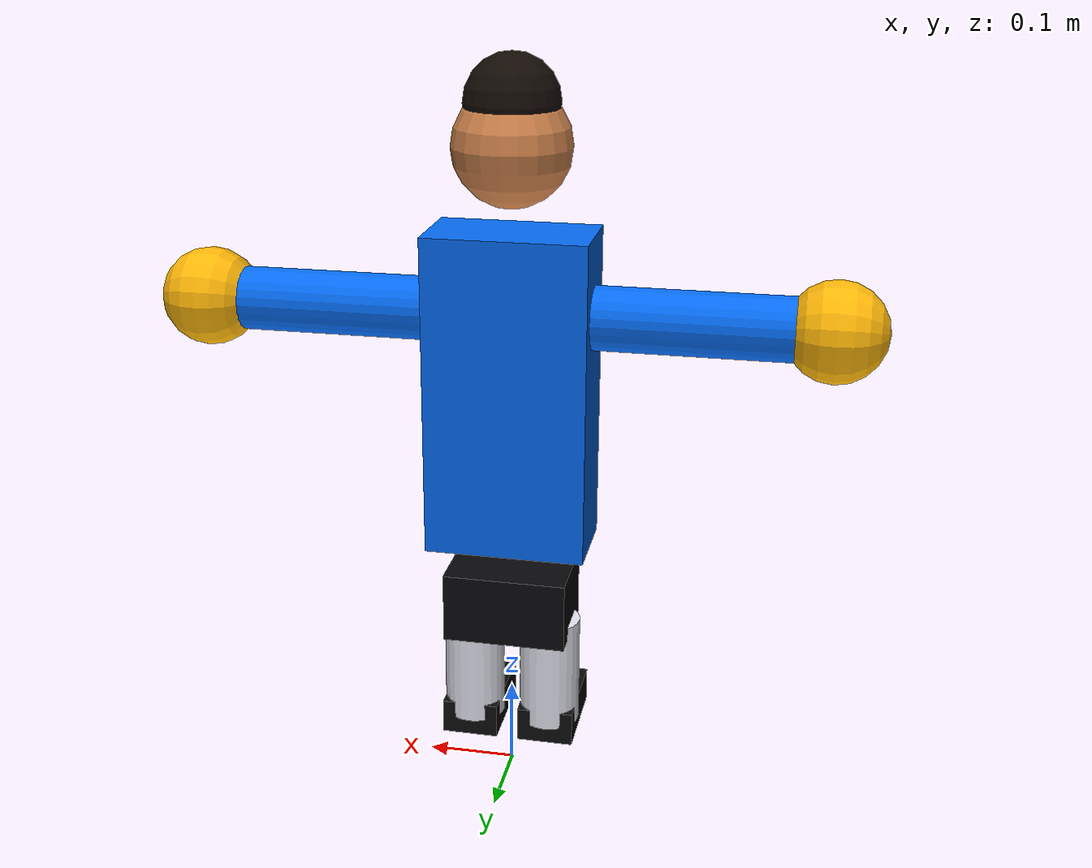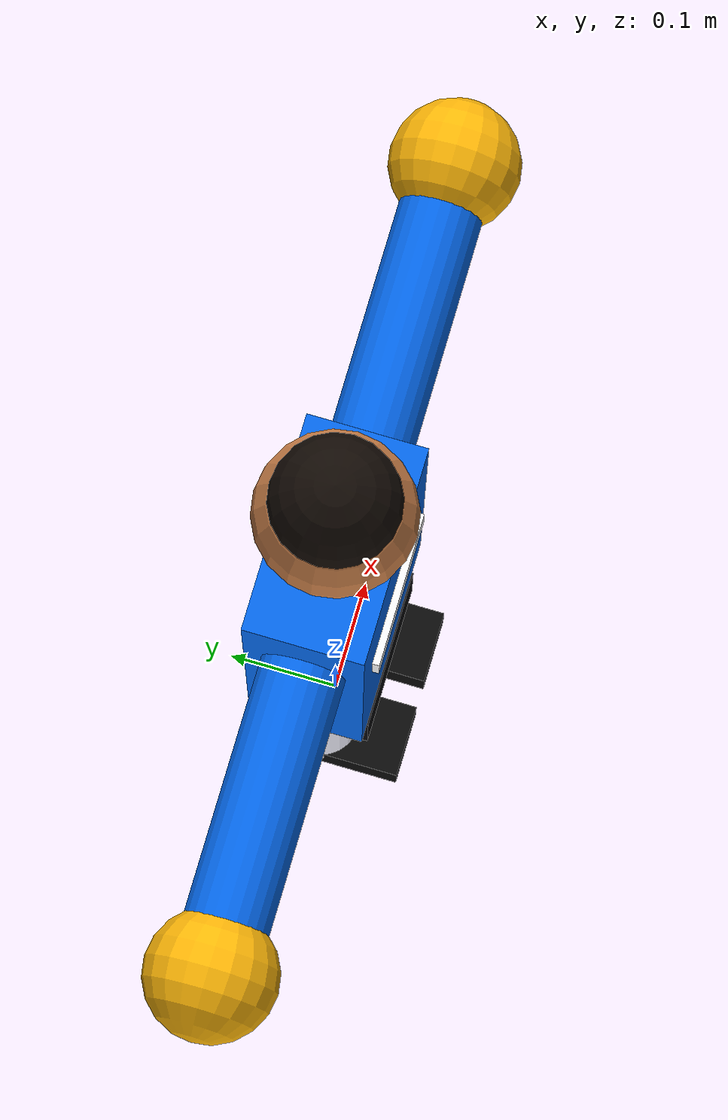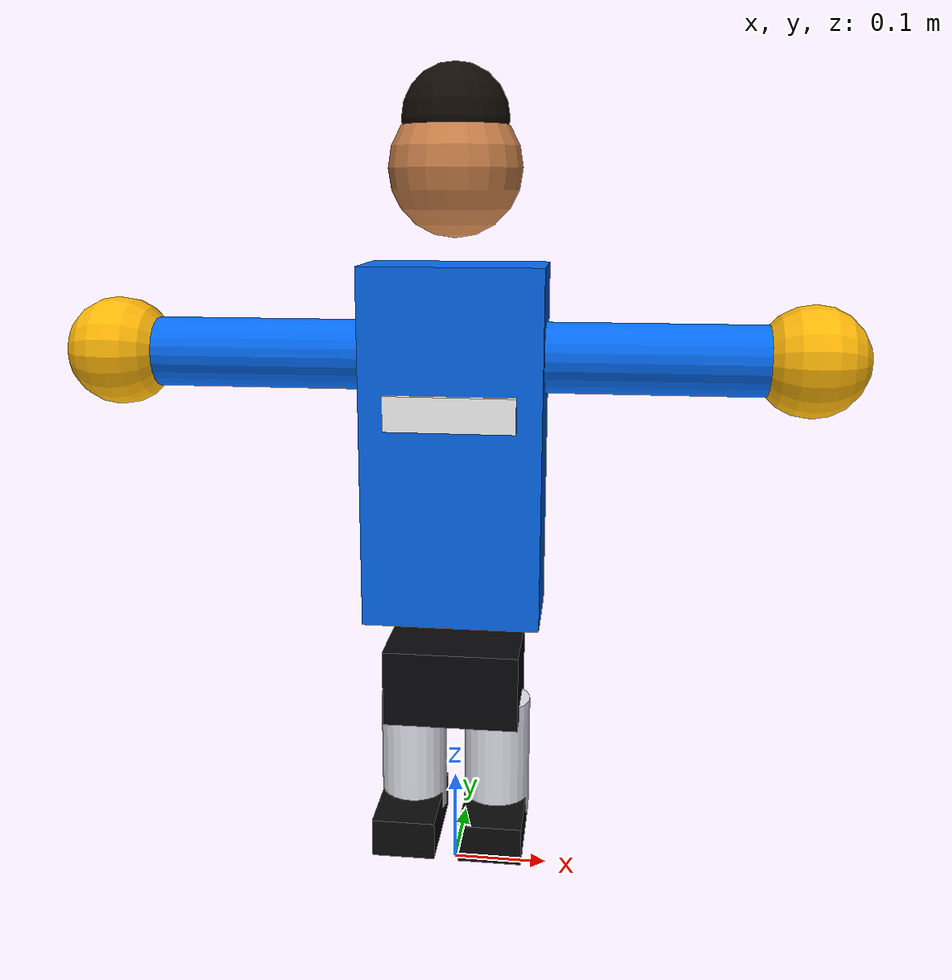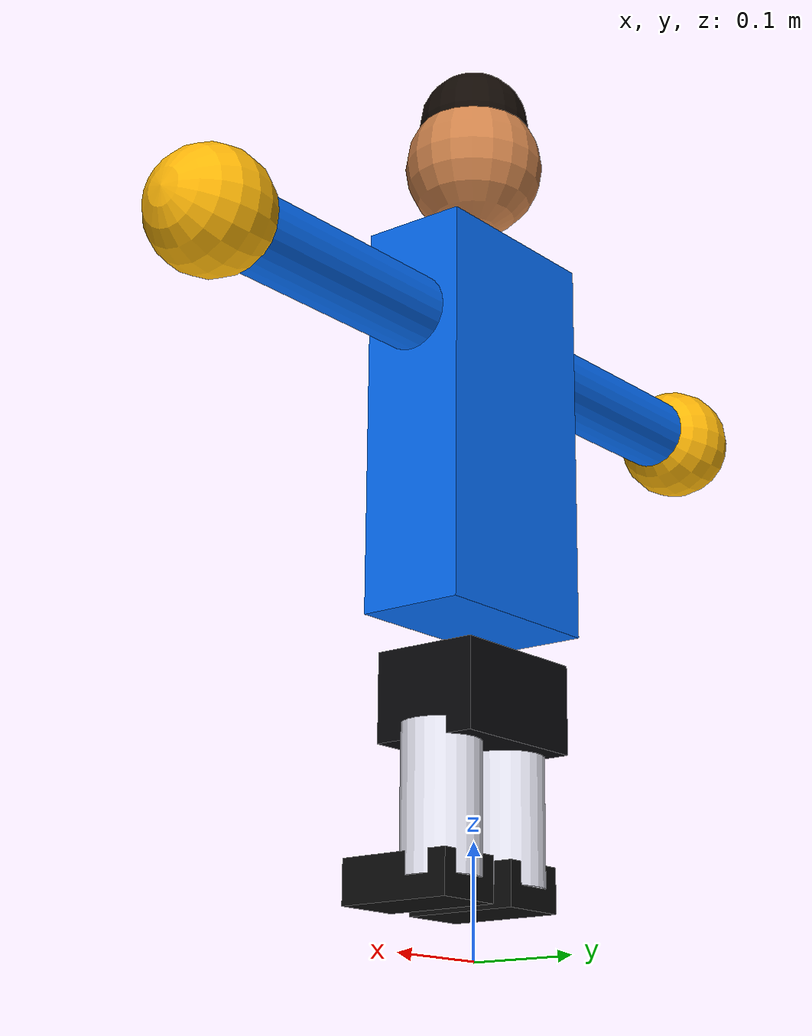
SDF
<?xml version="1.0" ?>
<sdf version="1.8">
  <model name="turtlebot3_burger">
    <pose>0.0 0.0 0.0 0.0 0.0 0.0</pose>

    <link name="base_footprint"/>

    <link name="base_link">

      <inertial>
        <pose>-0.064 0 0.070 0 0 0</pose>
        <inertia>
          <ixx>1.9527e-02</ixx>
          <ixy>0</ixy>
          <ixz>0</ixz>
          <iyy>1.9527e-02</iyy>
          <iyz>0</iyz>
          <izz>1.9527e-02</izz>
        </inertia>
        <mass>8.2573504e-01</mass>
      </inertial>

      <collision name="base_collision">
        <pose>-0.032 0 0.070 0 0 0</pose>
        <geometry>
          <box>
            <size>0.14 0.14 0.14</size>
          </box>
        </geometry>
      </collision>

      <collision name="goalkeeper_save_collision">
        <pose>0 0 0.46 0 0 0</pose>
        <geometry>
          <box>
            <size>0.34 0.10 0.82</size>
          </box>
        </geometry>
        <surface>
          <friction>
            <ode>
              <mu>1.0</mu>
              <mu2>1.0</mu2>
            </ode>
          </friction>
          <bounce>
            <restitution_coefficient>0.25</restitution_coefficient>
            <threshold>0.1</threshold>
          </bounce>
        </surface>
      </collision>

      <visual name="goalkeeper_shorts">
        <pose>0 0 0.22 0 0 0</pose>
        <geometry>
          <box>
            <size>0.14 0.10 0.08</size>
          </box>
        </geometry>
        <material>
          <ambient>0.03 0.03 0.04 1</ambient>
          <diffuse>0.03 0.03 0.04 1</diffuse>
        </material>
      </visual>

      <visual name="goalkeeper_jersey">
        <pose>0 0 0.47 0 0 0</pose>
        <geometry>
          <box>
            <size>0.18 0.10 0.36</size>
          </box>
        </geometry>
        <material>
          <ambient>0.02 0.28 0.75 1</ambient>
          <diffuse>0.02 0.42 0.95 1</diffuse>
        </material>
      </visual>

      <visual name="goalkeeper_chest_stripe">
        <pose>0 -0.052 0.51 0 0 0</pose>
        <geometry>
          <box>
            <size>0.13 0.008 0.035</size>
          </box>
        </geometry>
        <material>
          <ambient>0.9 0.9 0.9 1</ambient>
          <diffuse>1 1 1 1</diffuse>
        </material>
      </visual>

      <visual name="goalkeeper_head">
        <pose>0 0 0.74 0 0 0</pose>
        <geometry>
          <sphere>
            <radius>0.065</radius>
          </sphere>
        </geometry>
        <material>
          <ambient>0.55 0.30 0.16 1</ambient>
          <diffuse>0.82 0.52 0.30 1</diffuse>
        </material>
      </visual>

      <visual name="goalkeeper_hair">
        <pose>0 0 0.785 0 0 0</pose>
        <geometry>
          <sphere>
            <radius>0.052</radius>
          </sphere>
        </geometry>
        <material>
          <ambient>0.04 0.025 0.015 1</ambient>
          <diffuse>0.07 0.04 0.02 1</diffuse>
        </material>
      </visual>

      <visual name="goalkeeper_left_leg">
        <pose>0.045 0 0.13 0 0 0</pose>
        <geometry>
          <cylinder>
            <radius>0.035</radius>
            <length>0.13</length>
          </cylinder>
        </geometry>
        <material>
          <ambient>0.68 0.68 0.72 1</ambient>
          <diffuse>0.9 0.9 0.95 1</diffuse>
        </material>
      </visual>

      <visual name="goalkeeper_right_leg">
        <pose>-0.045 0 0.13 0 0 0</pose>
        <geometry>
          <cylinder>
            <radius>0.035</radius>
            <length>0.13</length>
          </cylinder>
        </geometry>
        <material>
          <ambient>0.68 0.68 0.72 1</ambient>
          <diffuse>0.9 0.9 0.95 1</diffuse>
        </material>
      </visual>

      <visual name="goalkeeper_left_boot">
        <pose>0.045 -0.025 0.065 0 0 0</pose>
        <geometry>
          <box>
            <size>0.065 0.11 0.04</size>
          </box>
        </geometry>
        <material>
          <ambient>0.02 0.02 0.02 1</ambient>
          <diffuse>0.04 0.04 0.04 1</diffuse>
        </material>
      </visual>

      <visual name="goalkeeper_right_boot">
        <pose>-0.045 -0.025 0.065 0 0 0</pose>
        <geometry>
          <box>
            <size>0.065 0.11 0.04</size>
          </box>
        </geometry>
        <material>
          <ambient>0.02 0.02 0.02 1</ambient>
          <diffuse>0.04 0.04 0.04 1</diffuse>
        </material>
      </visual>
    </link>

    <link name="left_arm_link">
      <pose>0.20 0 0.56 0 1.5708 0</pose>
      <inertial>
        <mass>0.04</mass>
        <inertia>
          <ixx>0.00015</ixx>
          <iyy>0.00015</iyy>
          <izz>0.00005</izz>
        </inertia>
      </inertial>
      <collision name="left_arm_collision">
        <geometry>
          <cylinder>
            <radius>0.035</radius>
            <length>0.24</length>
          </cylinder>
        </geometry>
      </collision>
      <visual name="left_arm_visual">
        <geometry>
          <cylinder>
            <radius>0.035</radius>
            <length>0.24</length>
          </cylinder>
        </geometry>
        <material>
          <ambient>0.02 0.28 0.75 1</ambient>
          <diffuse>0.02 0.42 0.95 1</diffuse>
        </material>
      </visual>
      <collision name="left_glove_collision">
        <pose>0 0 0.145 0 0 0</pose>
        <geometry>
          <sphere><radius>0.055</radius></sphere>
        </geometry>
      </collision>
      <visual name="left_glove_visual">
        <pose>0 0 0.145 0 0 0</pose>
        <geometry>
          <sphere><radius>0.055</radius></sphere>
        </geometry>
        <material>
          <ambient>0.9 0.55 0.02 1</ambient>
          <diffuse>1 0.72 0.03 1</diffuse>
        </material>
      </visual>
    </link>

    <link name="right_arm_link">
      <pose>-0.20 0 0.56 0 -1.5708 0</pose>
      <inertial>
        <mass>0.04</mass>
        <inertia>
          <ixx>0.00015</ixx>
          <iyy>0.00015</iyy>
          <izz>0.00005</izz>
        </inertia>
      </inertial>
      <collision name="right_arm_collision">
        <geometry>
          <cylinder>
            <radius>0.035</radius>
            <length>0.24</length>
          </cylinder>
        </geometry>
      </collision>
      <visual name="right_arm_visual">
        <geometry>
          <cylinder>
            <radius>0.035</radius>
            <length>0.24</length>
          </cylinder>
        </geometry>
        <material>
          <ambient>0.02 0.28 0.75 1</ambient>
          <diffuse>0.02 0.42 0.95 1</diffuse>
        </material>
      </visual>
      <collision name="right_glove_collision">
        <pose>0 0 0.145 0 0 0</pose>
        <geometry>
          <sphere><radius>0.055</radius></sphere>
        </geometry>
      </collision>
      <visual name="right_glove_visual">
        <pose>0 0 0.145 0 0 0</pose>
        <geometry>
          <sphere><radius>0.055</radius></sphere>
        </geometry>
        <material>
          <ambient>0.9 0.55 0.02 1</ambient>
          <diffuse>1 0.72 0.03 1</diffuse>
        </material>
      </visual>
    </link>

    <link name="imu_link">
      <sensor name="tb3_imu" type="imu">
        <always_on>true</always_on>
        <update_rate>200</update_rate>
        <topic>imu</topic>
        <imu>
          <angular_velocity>
            <x>
              <noise type="gaussian">
                <mean>0.0</mean>
                <stddev>2e-4</stddev>
              </noise>
            </x>
            <y>
              <noise type="gaussian">
                <mean>0.0</mean>
                <stddev>2e-4</stddev>
              </noise>
            </y>
            <z>
              <noise type="gaussian">
                <mean>0.0</mean>
                <stddev>2e-4</stddev>
              </noise>
            </z>
          </angular_velocity>
          <linear_acceleration>
            <x>
              <noise type="gaussian">
                <mean>0.0</mean>
                <stddev>1.7e-2</stddev>
              </noise>
            </x>
            <y>
              <noise type="gaussian">
                <mean>0.0</mean>
                <stddev>1.7e-2</stddev>
              </noise>
            </y>
            <z>
              <noise type="gaussian">
                <mean>0.0</mean>
                <stddev>1.7e-2</stddev>
              </noise>
            </z>
          </linear_acceleration>
        </imu>
      </sensor>
    </link>

    <link name="base_scan">
      <inertial>
        <pose>-0.020 0 0.161 0 0 0</pose>
        <inertia>
          <ixx>0.0001</ixx>
          <ixy>0.000</ixy>
          <ixz>0.000</ixz>
          <iyy>0.0001</iyy>
          <iyz>0.000</iyz>
          <izz>0.0001</izz>
        </inertia>
        <mass>0.114</mass>
      </inertial>

      <collision name="lidar_sensor_collision">
        <pose>-0.020 0 0.161 0 0 0</pose>
        <geometry>
          <cylinder>
            <radius>0.0508</radius>
            <length>0.055</length>
          </cylinder>
        </geometry>
      </collision>

    </link>

    <link name="wheel_left_link">

      <inertial>
        <pose>0 0.08 0.023 -1.57 0 0</pose>
        <inertia>
          <ixx>5.445e-05</ixx>
          <ixy>0</ixy>
          <ixz>0</ixz>
          <iyy>5.445e-05</iyy>
          <iyz>0</iyz>
          <izz>1.089e-04</izz>
        </inertia>
        <mass>0.1</mass>
      </inertial>

      <collision name="wheel_left_collision">
        <pose>0 0.08 0.023 -1.57 0 0</pose>
        <geometry>
          <cylinder>
            <radius>0.033</radius>
            <length>0.018</length>
          </cylinder>
        </geometry>
        <surface>
          <!-- This friction pamareter don't contain reliable data!! -->
          <friction>
            <ode>
              <mu>100000.0</mu>
              <mu2>100000.0</mu2>
              <fdir1>0 0 0</fdir1>
              <slip1>0.0</slip1>
              <slip2>0.0</slip2>
            </ode>
          </friction>
          <contact>
            <ode>
              <soft_cfm>0</soft_cfm>
              <soft_erp>0.2</soft_erp>
              <kp>1e+5</kp>
              <kd>1</kd>
              <max_vel>0.01</max_vel>
              <min_depth>0.001</min_depth>
            </ode>
          </contact>
        </surface>
      </collision>

    </link>

    <link name="wheel_right_link">

      <inertial>
        <pose>0.0 -0.08 0.023 -1.57 0 0</pose>
        <inertia>
          <ixx>5.445e-05</ixx>
          <ixy>0</ixy>
          <ixz>0</ixz>
          <iyy>5.445e-05</iyy>
          <iyz>0</iyz>
          <izz>1.089e-04</izz>
        </inertia>
        <mass>0.1</mass>
      </inertial>

      <collision name="wheel_right_collision">
        <pose>0.0 -0.08 0.023 -1.57 0 0</pose>
        <geometry>
          <cylinder>
            <radius>0.033</radius>
            <length>0.018</length>
          </cylinder>
        </geometry>
        <surface>
          <!-- This friction pamareter don't contain reliable data!! -->
          <friction>
            <ode>
              <mu>100000.0</mu>
              <mu2>100000.0</mu2>
              <fdir1>0 0 0</fdir1>
              <slip1>0.0</slip1>
              <slip2>0.0</slip2>
            </ode>
          </friction>
          <contact>
            <ode>
              <soft_cfm>0</soft_cfm>
              <soft_erp>0.2</soft_erp>
              <kp>1e+5</kp>
              <kd>1</kd>
              <max_vel>0.01</max_vel>
              <min_depth>0.001</min_depth>
            </ode>
          </contact>
        </surface>
      </collision>

    </link>

    <link name='caster_back_link'>
      <pose>-0.081 0 -0.004 -1.57 0 0</pose>
      <inertial>
        <mass>0.005</mass>
        <inertia>
          <ixx>0.00001</ixx>
          <ixy>0.000</ixy>
          <ixz>0.000</ixz>
          <iyy>0.00001</iyy>
          <iyz>0.000</iyz>
          <izz>0.00001</izz>
        </inertia>
      </inertial>
      <collision name='collision'>
        <geometry>
          <sphere>
            <radius>0.005000</radius>
          </sphere>
        </geometry>
        <surface>
          <contact>
            <ode>
              <soft_cfm>0</soft_cfm>
              <soft_erp>0.2</soft_erp>
              <kp>1e+5</kp>
              <kd>1</kd>
              <max_vel>0.01</max_vel>
              <min_depth>0.001</min_depth>
            </ode>
          </contact>
        </surface>
      </collision>
    </link>

    <joint name="base_joint" type="fixed">
      <parent>base_footprint</parent>
      <child>base_link</child>
      <pose>0.0 0.0 0.010 0 0 0</pose>
    </joint>

    <joint name="left_shoulder_joint" type="fixed">
      <parent>base_link</parent>
      <child>left_arm_link</child>
      <pose>0.08 0 0.56 0 0 0</pose>
    </joint>

    <joint name="right_shoulder_joint" type="fixed">
      <parent>base_link</parent>
      <child>right_arm_link</child>
      <pose>-0.08 0 0.56 0 0 0</pose>
    </joint>

    <joint name="wheel_left_joint" type="revolute">
      <parent>base_link</parent>
      <child>wheel_left_link</child>
      <pose>0.0 0.08 0.023 -1.57 0 0</pose>
      <axis>
        <xyz>0 0 1</xyz>
        <limit>
          <effort>20</effort>
        </limit>
      </axis>
    </joint>

    <joint name="wheel_right_joint" type="revolute">
      <parent>base_link</parent>
      <child>wheel_right_link</child>
      <pose>0.0 -0.08 0.023 -1.57 0 0</pose>
      <axis>
        <xyz>0 0 1</xyz>
        <limit>
          <effort>20</effort>
        </limit>
      </axis>
    </joint>

    <joint name='caster_back_joint' type='ball'>
      <parent>base_link</parent>
      <child>caster_back_link</child>
    </joint>

    <joint name="imu_joint" type="fixed">
      <parent>base_link</parent>
      <child>imu_link</child>
      <pose>-0.032 0 0.068 0 0 0</pose>
      <axis>
        <xyz>0 0 1</xyz>
      </axis>
    </joint>

    <joint name="lidar_joint" type="fixed">
      <parent>base_link</parent>
      <child>base_scan</child>
      <pose>-0.032 0 0.171 0 0 0</pose>
      <axis>
        <xyz>0 0 1</xyz>
      </axis>
    </joint>

    <plugin filename="gz-sim-diff-drive-system" name="gz::sim::systems::DiffDrive">

      <!-- wheels -->
      <left_joint>wheel_left_joint</left_joint>
      <right_joint>wheel_right_joint</right_joint>

      <!-- kinematics -->
      <wheel_separation>0.160</wheel_separation>
      <wheel_radius>0.033</wheel_radius>

      <!-- limits -->
      <max_linear_velocity>5.0</max_linear_velocity>
      <max_linear_acceleration>30.0</max_linear_acceleration>
      <max_linear_deceleration>30.0</max_linear_deceleration>

      <topic>cmd_vel</topic>

      <odom_topic>odom</odom_topic>
      <frame_id>odom</frame_id>
      <child_frame_id>base_footprint</child_frame_id>
      <odom_publisher_frequency>30</odom_publisher_frequency>

      <tf_topic>/tf</tf_topic>

    </plugin>

    <plugin filename="gz-sim-joint-state-publisher-system" name="gz::sim::systems::JointStatePublisher">
      <topic>joint_states</topic>
      <joint_name>wheel_left_joint</joint_name>
      <joint_name>wheel_right_joint</joint_name>
    </plugin>

  </model>
</sdf>
